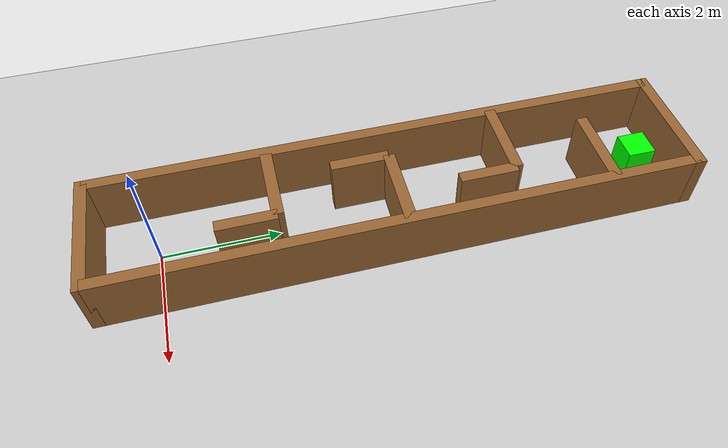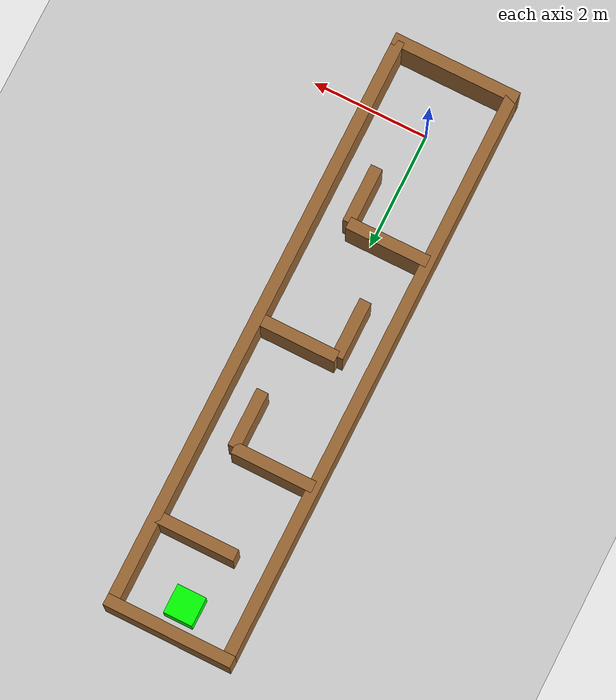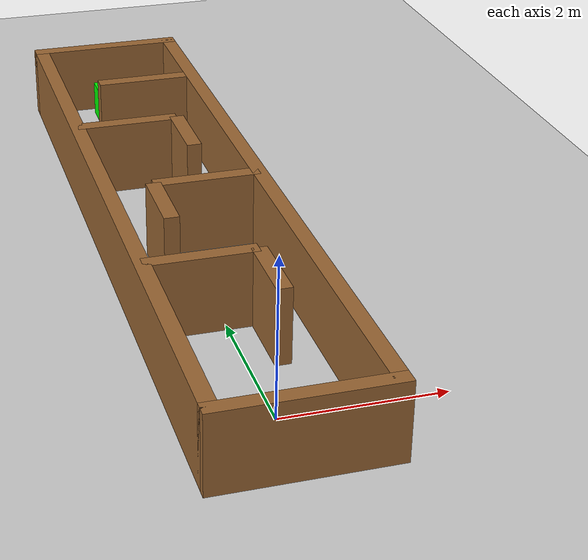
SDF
<?xml version="1.0" ?>
<sdf version="1.6">
    <world name="maze_medium">
    <light type="directional" name="sun">
      <cast_shadows>true</cast_shadows>
      <pose>0 0 10 0 0 0</pose>
      <diffuse>0.8 0.8 0.8 1</diffuse>
      <specular>0.2 0.2 0.2 1</specular>
      <attenuation><range>1000</range><constant>0.9</constant><linear>0.01</linear><quadratic>0.001</quadratic></attenuation>
      <direction>-0.5 0.1 -0.9</direction>
    </light>
    <model name="ground_plane">
      <static>true</static>
      <link name="link">
        <collision name="collision"><geometry><plane><normal>0 0 1</normal><size>100 100</size></plane></geometry></collision>
        <visual name="visual"><geometry><plane><normal>0 0 1</normal><size>100 100</size></plane></geometry>
          <material><ambient>0.8 0.8 0.8 1</ambient><diffuse>0.8 0.8 0.8 1</diffuse><specular>0.8 0.8 0.8 1</specular></material>
        </visual>
      </link>
    </model>
    <plugin filename="gz-sim-physics-system" name="gz::sim::systems::Physics"></plugin>
    <plugin filename="gz-sim-user-commands-system" name="gz::sim::systems::UserCommands"></plugin>
    <plugin filename="gz-sim-scene-broadcaster-system" name="gz::sim::systems::SceneBroadcaster"></plugin>
    <plugin filename="gz-sim-sensors-system" name="gz::sim::systems::Sensors"><render_engine>ogre2</render_engine></plugin>
    <!-- Boundaries (2m total width, 10m total length) -->
    <model name="wall_left">
      <pose>-1.0 4.0 0.5 0 0 0</pose>
      <static>true</static>
      <link name="link">
        <collision name="collision"><geometry><box><size>0.2 10.0 1.0</size></box></geometry></collision>
        <visual name="visual">
          <geometry><box><size>0.2 10.0 1.0</size></box></geometry>
          <material><ambient>0.6 0.4 0.2 1</ambient></material>
        </visual>
      </link>
    </model>
    <model name="wall_right">
      <pose>1.0 4.0 0.5 0 0 0</pose>
      <static>true</static>
      <link name="link">
        <collision name="collision"><geometry><box><size>0.2 10.0 1.0</size></box></geometry></collision>
        <visual name="visual">
          <geometry><box><size>0.2 10.0 1.0</size></box></geometry>
          <material><ambient>0.6 0.4 0.2 1</ambient></material>
        </visual>
      </link>
    </model>
    <model name="wall_bottom">
      <pose>0 -1.0 0.5 0 0 0</pose>
      <static>true</static>
      <link name="link">
        <collision name="collision"><geometry><box><size>2.2 0.2 1.0</size></box></geometry></collision>
        <visual name="visual">
          <geometry><box><size>2.2 0.2 1.0</size></box></geometry>
          <material><ambient>0.6 0.4 0.2 1</ambient></material>
        </visual>
      </link>
    </model>
    <model name="wall_top">
      <pose>0 9.0 0.5 0 0 0</pose>
      <static>true</static>
      <link name="link">
        <collision name="collision"><geometry><box><size>2.2 0.2 1.0</size></box></geometry></collision>
        <visual name="visual">
          <geometry><box><size>2.2 0.2 1.0</size></box></geometry>
          <material><ambient>0.6 0.4 0.2 1</ambient></material>
        </visual>
      </link>
    </model>
    <!-- Zig-Zag horizontal obstacles -->
    <model name="horiz_1">
      <pose>-0.3 2.0 0.5 0 0 0</pose>
      <static>true</static>
      <link name="link">
        <collision name="collision"><geometry><box><size>1.4 0.2 1.0</size></box></geometry></collision>
        <visual name="visual"><geometry><box><size>1.4 0.2 1.0</size></box></geometry><material><ambient>0.6 0.4 0.2 1</ambient></material></visual>
      </link>
    </model>
    <model name="horiz_2">
      <pose>0.3 4.0 0.5 0 0 0</pose>
      <static>true</static>
      <link name="link">
        <collision name="collision"><geometry><box><size>1.4 0.2 1.0</size></box></geometry></collision>
        <visual name="visual"><geometry><box><size>1.4 0.2 1.0</size></box></geometry><material><ambient>0.6 0.4 0.2 1</ambient></material></visual>
      </link>
    </model>
    <model name="horiz_3">
      <pose>-0.3 6.0 0.5 0 0 0</pose>
      <static>true</static>
      <link name="link">
        <collision name="collision"><geometry><box><size>1.4 0.2 1.0</size></box></geometry></collision>
        <visual name="visual"><geometry><box><size>1.4 0.2 1.0</size></box></geometry><material><ambient>0.6 0.4 0.2 1</ambient></material></visual>
      </link>
    </model>
    <model name="horiz_4">
      <pose>0.3 7.5 0.5 0 0 0</pose>
      <static>true</static>
      <link name="link">
        <collision name="collision"><geometry><box><size>1.4 0.2 1.0</size></box></geometry></collision>
        <visual name="visual"><geometry><box><size>1.4 0.2 1.0</size></box></geometry><material><ambient>0.6 0.4 0.2 1</ambient></material></visual>
      </link>
    </model>
    <!-- Dead-end vertical blocks -->
    <model name="vert_1">
      <pose>0.4 1.5 0.5 0 0 0</pose>
      <static>true</static>
      <link name="link">
        <collision name="collision"><geometry><box><size>0.2 1.0 1.0</size></box></geometry></collision>
        <visual name="visual"><geometry><box><size>0.2 1.0 1.0</size></box></geometry><material><ambient>0.6 0.4 0.2 1</ambient></material></visual>
      </link>
    </model>
    <model name="vert_2">
      <pose>-0.4 3.5 0.5 0 0 0</pose>
      <static>true</static>
      <link name="link">
        <collision name="collision"><geometry><box><size>0.2 1.0 1.0</size></box></geometry></collision>
        <visual name="visual"><geometry><box><size>0.2 1.0 1.0</size></box></geometry><material><ambient>0.6 0.4 0.2 1</ambient></material></visual>
      </link>
    </model>
    <model name="vert_3">
      <pose>0.4 5.5 0.5 0 0 0</pose>
      <static>true</static>
      <link name="link">
        <collision name="collision"><geometry><box><size>0.2 1.0 1.0</size></box></geometry></collision>
        <visual name="visual"><geometry><box><size>0.2 1.0 1.0</size></box></geometry><material><ambient>0.6 0.4 0.2 1</ambient></material></visual>
      </link>
    </model>
    <!-- Goal Marker (Green Box) -->
    <model name="goal_marker">
      <pose>0.0 8.5 0.25 0 0 0</pose>
      <static>true</static>
      <link name="link">
        <visual name="visual">
          <geometry><box><size>0.5 0.5 0.5</size></box></geometry>
          <material>
            <ambient>0 1 0 1</ambient>
            <diffuse>0 1 0 1</diffuse>
          </material>
        </visual>
      </link>
    </model>
  </world>
</sdf>
